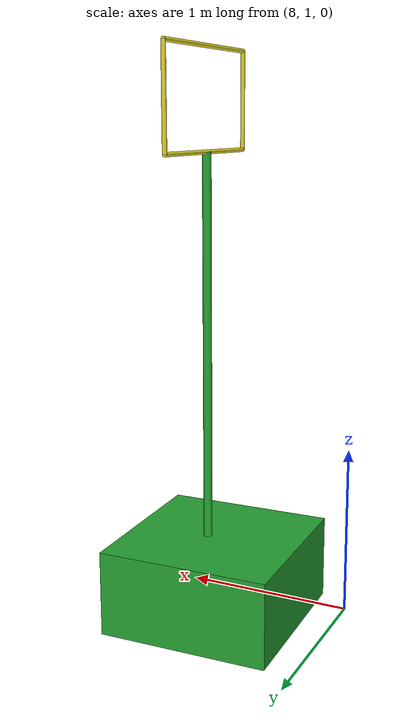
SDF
<sdf version="1.6">
 <world name="vrc_task_1">
  <model name="flipkart_hoop_clone_3">
   <link name="link_0">
    <inertial>
     <mass>0.530306</mass>
     <inertia>
      <ixx>0.0566207</ixx>
      <ixy>0</ixy>
      <ixz>0</ixz>
      <iyy>0.0566207</iyy>
      <iyz>0</iyz>
      <izz>0.0883844</izz>
     </inertia>
    </inertial>
    <pose>0.141833 0.667401 -1.68595 0 -0 0</pose>
    <visual name="visual">
     <geometry><box><size>1 1 0.5</size></box></geometry>
     <material>
      <lighting>1</lighting>
      <script><uri>file://media/materials/scripts/gazebo.material</uri><name>Gazebo/Green</name></script>
      <shader type="pixel"/>
      <emissive>0 0 0 1</emissive>
     </material>
    </visual>
    <collision name="collision">
     <geometry><box><size>1 1 0.5</size></box></geometry>
     <surface>
      <friction>
       <ode><mu>1</mu><mu2>1</mu2><fdir1>0 0 0</fdir1><slip1>0</slip1><slip2>0</slip2></ode>
       <torsional>
        <coefficient>1</coefficient>
        <patch_radius>0</patch_radius>
        <surface_radius>0</surface_radius>
        <use_patch_radius>1</use_patch_radius>
        <ode><slip>0</slip></ode>
       </torsional>
      </friction>
      <bounce><restitution_coefficient>0</restitution_coefficient><threshold>1e+06</threshold></bounce>
      <contact>
       <collide_without_contact>0</collide_without_contact>
       <collide_without_contact_bitmask>1</collide_without_contact_bitmask>
       <collide_bitmask>1</collide_bitmask>
       <ode>
        <soft_cfm>0</soft_cfm>
        <soft_erp>0.2</soft_erp>
        <kp>1e+13</kp>
        <kd>1</kd>
        <max_vel>0.01</max_vel>
        <min_depth>0</min_depth>
       </ode>
       <bullet>
        <split_impulse>1</split_impulse>
        <split_impulse_penetration_threshold>-0.01</split_impulse_penetration_threshold>
        <soft_cfm>0</soft_cfm>
        <soft_erp>0.2</soft_erp>
        <kp>1e+13</kp>
        <kd>1</kd>
       </bullet>
      </contact>
     </surface>
    </collision>
   </link>
   <link name="link_1">
    <inertial>
     <mass>0.25</mass>
     <inertia>
      <ixx>0.130247</ixx>
      <ixy>0</ixy>
      <ixz>0</ixz>
      <iyy>0.130247</iyy>
      <iyz>0</iyz>
      <izz>7.813e-05</izz>
     </inertia>
    </inertial>
    <pose>0.122412 0.714194 -0.478486 0 -0 0</pose>
    <visual name="visual">
     <geometry><cylinder><radius>0.025</radius><length>2.5</length></cylinder></geometry>
     <material>
      <lighting>1</lighting>
      <script><uri>file://media/materials/scripts/gazebo.material</uri><name>Gazebo/Green</name></script>
      <shader type="pixel"/>
      <emissive>0 0 0 1</emissive>
     </material>
    </visual>
    <collision name="collision">
     <geometry><cylinder><radius>0.025</radius><length>2.5</length></cylinder></geometry>
     <surface>
      <friction>
       <ode><mu>1</mu><mu2>1</mu2><fdir1>0 0 0</fdir1><slip1>0</slip1><slip2>0</slip2></ode>
       <torsional>
        <coefficient>1</coefficient>
        <patch_radius>0</patch_radius>
        <surface_radius>0</surface_radius>
        <use_patch_radius>1</use_patch_radius>
        <ode><slip>0</slip></ode>
       </torsional>
      </friction>
      <bounce><restitution_coefficient>0</restitution_coefficient><threshold>1e+06</threshold></bounce>
      <contact>
       <collide_without_contact>0</collide_without_contact>
       <collide_without_contact_bitmask>1</collide_without_contact_bitmask>
       <collide_bitmask>1</collide_bitmask>
       <ode>
        <soft_cfm>0</soft_cfm>
        <soft_erp>0.2</soft_erp>
        <kp>1e+13</kp>
        <kd>1</kd>
        <max_vel>0.01</max_vel>
        <min_depth>0</min_depth>
       </ode>
       <bullet>
        <split_impulse>1</split_impulse>
        <split_impulse_penetration_threshold>-0.01</split_impulse_penetration_threshold>
        <soft_cfm>0</soft_cfm>
        <soft_erp>0.2</soft_erp>
        <kp>1e+13</kp>
        <kd>1</kd>
       </bullet>
      </contact>
     </surface>
    </collision>
   </link>
   <link name="link_2">
    <inertial>
     <mass>0.05</mass>
     <inertia>
      <ixx>0.00416862</ixx>
      <ixy>0</ixy>
      <ixz>0</ixz>
      <iyy>0.00416862</iyy>
      <iyz>0</iyz>
      <izz>3.91e-06</izz>
     </inertia>
    </inertial>
    <pose>0.122412 0.714194 1.32141 1.57 -0 1.57</pose>
    <visual name="visual">
     <geometry><cylinder><radius>0.0125</radius><length>1</length></cylinder></geometry>
     <material>
      <lighting>1</lighting>
      <script><uri>file://media/materials/scripts/gazebo.material</uri><name>Gazebo/Yellow</name></script>
      <shader type="pixel"/>
      <emissive>0 0 0 1</emissive>
     </material>
    </visual>
    <collision name="collision">
     <geometry><cylinder><radius>0.0125</radius><length>1</length></cylinder></geometry>
     <surface>
      <friction>
       <ode><mu>1</mu><mu2>1</mu2><fdir1>0 0 0</fdir1><slip1>0</slip1><slip2>0</slip2></ode>
       <torsional>
        <coefficient>1</coefficient>
        <patch_radius>0</patch_radius>
        <surface_radius>0</surface_radius>
        <use_patch_radius>1</use_patch_radius>
        <ode><slip>0</slip></ode>
       </torsional>
      </friction>
      <bounce><restitution_coefficient>0</restitution_coefficient><threshold>1e+06</threshold></bounce>
      <contact>
       <collide_without_contact>0</collide_without_contact>
       <collide_without_contact_bitmask>1</collide_without_contact_bitmask>
       <collide_bitmask>1</collide_bitmask>
       <ode>
        <soft_cfm>0</soft_cfm>
        <soft_erp>0.2</soft_erp>
        <kp>1e+13</kp>
        <kd>1</kd>
        <max_vel>0.01</max_vel>
        <min_depth>0</min_depth>
       </ode>
       <bullet>
        <split_impulse>1</split_impulse>
        <split_impulse_penetration_threshold>-0.01</split_impulse_penetration_threshold>
        <soft_cfm>0</soft_cfm>
        <soft_erp>0.2</soft_erp>
        <kp>1e+13</kp>
        <kd>1</kd>
       </bullet>
      </contact>
     </surface>
    </collision>
   </link>
   <link name="link_2_clone_0">
    <inertial>
     <mass>0.05</mass>
     <inertia>
      <ixx>0.00416862</ixx>
      <ixy>0</ixy>
      <ixz>0</ixz>
      <iyy>0.00416862</iyy>
      <iyz>0</iyz>
      <izz>3.91e-06</izz>
     </inertia>
    </inertial>
    <pose>0.122412 0.714194 0.771414 1.57 -0 1.57</pose>
    <visual name="visual">
     <geometry><cylinder><radius>0.0125</radius><length>1</length></cylinder></geometry>
     <material>
      <lighting>1</lighting>
      <script><uri>file://media/materials/scripts/gazebo.material</uri><name>Gazebo/Yellow</name></script>
      <shader type="pixel"/>
      <emissive>0 0 0 1</emissive>
     </material>
    </visual>
    <collision name="collision">
     <geometry><cylinder><radius>0.0125</radius><length>1</length></cylinder></geometry>
     <surface>
      <friction>
       <ode><mu>1</mu><mu2>1</mu2><fdir1>0 0 0</fdir1><slip1>0</slip1><slip2>0</slip2></ode>
       <torsional>
        <coefficient>1</coefficient>
        <patch_radius>0</patch_radius>
        <surface_radius>0</surface_radius>
        <use_patch_radius>1</use_patch_radius>
        <ode><slip>0</slip></ode>
       </torsional>
      </friction>
      <bounce><restitution_coefficient>0</restitution_coefficient><threshold>1e+06</threshold></bounce>
      <contact>
       <collide_without_contact>0</collide_without_contact>
       <collide_without_contact_bitmask>1</collide_without_contact_bitmask>
       <collide_bitmask>1</collide_bitmask>
       <ode>
        <soft_cfm>0</soft_cfm>
        <soft_erp>0.2</soft_erp>
        <kp>1e+13</kp>
        <kd>1</kd>
        <max_vel>0.01</max_vel>
        <min_depth>0</min_depth>
       </ode>
       <bullet>
        <split_impulse>1</split_impulse>
        <split_impulse_penetration_threshold>-0.01</split_impulse_penetration_threshold>
        <soft_cfm>0</soft_cfm>
        <soft_erp>0.2</soft_erp>
        <kp>1e+13</kp>
        <kd>1</kd>
       </bullet>
      </contact>
     </surface>
    </collision>
   </link>
   <link name="link_3_clone_clone">
    <inertial>
     <mass>0.025</mass>
     <inertia>
      <ixx>0.00063118</ixx>
      <ixy>0</ixy>
      <ixz>0</ixz>
      <iyy>0.00063118</iyy>
      <iyz>0</iyz>
      <izz>1.95e-06</izz>
     </inertia>
    </inertial>
    <pose>-0.377588 0.714194 1.04641 8e-06 -0 8e-06</pose>
    <visual name="visual">
     <geometry><cylinder><radius>0.0125</radius><length>0.55</length></cylinder></geometry>
     <material>
      <lighting>1</lighting>
      <script><uri>file://media/materials/scripts/gazebo.material</uri><name>Gazebo/Yellow</name></script>
      <shader type="pixel"/>
      <emissive>0 0 0 1</emissive>
     </material>
    </visual>
    <collision name="collision">
     <geometry><cylinder><radius>0.0125</radius><length>0.55</length></cylinder></geometry>
     <surface>
      <friction>
       <ode><mu>1</mu><mu2>1</mu2><fdir1>0 0 0</fdir1><slip1>0</slip1><slip2>0</slip2></ode>
       <torsional>
        <coefficient>1</coefficient>
        <patch_radius>0</patch_radius>
        <surface_radius>0</surface_radius>
        <use_patch_radius>1</use_patch_radius>
        <ode><slip>0</slip></ode>
       </torsional>
      </friction>
      <bounce><restitution_coefficient>0</restitution_coefficient><threshold>1e+06</threshold></bounce>
      <contact>
       <collide_without_contact>0</collide_without_contact>
       <collide_without_contact_bitmask>1</collide_without_contact_bitmask>
       <collide_bitmask>1</collide_bitmask>
       <ode>
        <soft_cfm>0</soft_cfm>
        <soft_erp>0.2</soft_erp>
        <kp>1e+13</kp>
        <kd>1</kd>
        <max_vel>0.01</max_vel>
        <min_depth>0</min_depth>
       </ode>
       <bullet>
        <split_impulse>1</split_impulse>
        <split_impulse_penetration_threshold>-0.01</split_impulse_penetration_threshold>
        <soft_cfm>0</soft_cfm>
        <soft_erp>0.2</soft_erp>
        <kp>1e+13</kp>
        <kd>1</kd>
       </bullet>
      </contact>
     </surface>
    </collision>
   </link>
   <link name="link_3_clone_clone_clone">
    <inertial>
     <mass>0.025</mass>
     <inertia>
      <ixx>0.00063118</ixx>
      <ixy>0</ixy>
      <ixz>0</ixz>
      <iyy>0.00063118</iyy>
      <iyz>0</iyz>
      <izz>1.95e-06</izz>
     </inertia>
    </inertial>
    <pose>0.622412 0.714194 1.04641 5.7e-05 -0 5.7e-05</pose>
    <visual name="visual">
     <geometry><cylinder><radius>0.0125</radius><length>0.55</length></cylinder></geometry>
     <material>
      <lighting>1</lighting>
      <script><uri>file://media/materials/scripts/gazebo.material</uri><name>Gazebo/Yellow</name></script>
      <shader type="pixel"/>
      <emissive>0 0 0 1</emissive>
     </material>
    </visual>
    <collision name="collision">
     <geometry><cylinder><radius>0.0125</radius><length>0.55</length></cylinder></geometry>
     <surface>
      <friction>
       <ode><mu>1</mu><mu2>1</mu2><fdir1>0 0 0</fdir1><slip1>0</slip1><slip2>0</slip2></ode>
       <torsional>
        <coefficient>1</coefficient>
        <patch_radius>0</patch_radius>
        <surface_radius>0</surface_radius>
        <use_patch_radius>1</use_patch_radius>
        <ode><slip>0</slip></ode>
       </torsional>
      </friction>
      <bounce><restitution_coefficient>0</restitution_coefficient><threshold>1e+06</threshold></bounce>
      <contact>
       <collide_without_contact>0</collide_without_contact>
       <collide_without_contact_bitmask>1</collide_without_contact_bitmask>
       <collide_bitmask>1</collide_bitmask>
       <ode>
        <soft_cfm>0</soft_cfm>
        <soft_erp>0.2</soft_erp>
        <kp>1e+13</kp>
        <kd>1</kd>
        <max_vel>0.01</max_vel>
        <min_depth>0</min_depth>
       </ode>
       <bullet>
        <split_impulse>1</split_impulse>
        <split_impulse_penetration_threshold>-0.01</split_impulse_penetration_threshold>
        <soft_cfm>0</soft_cfm>
        <soft_erp>0.2</soft_erp>
        <kp>1e+13</kp>
        <kd>1</kd>
       </bullet>
      </contact>
     </surface>
    </collision>
   </link>
   <joint name="link_0_JOINT_0" type="fixed">
    <parent>link_0</parent>
    <child>link_1</child>
    <physics>
     <ode><limit><cfm>0</cfm><erp>0.2</erp></limit><suspension><cfm>0</cfm><erp>0.2</erp></suspension></ode>
    </physics>
   </joint>
   <joint name="link_1_JOINT_0" type="fixed">
    <parent>link_1</parent>
    <child>link_2_clone_0</child>
    <physics>
     <ode><limit><cfm>0</cfm><erp>0.2</erp></limit><suspension><cfm>0</cfm><erp>0.2</erp></suspension></ode>
    </physics>
   </joint>
   <joint name="link_2_JOINT_2" type="fixed">
    <parent>link_2</parent>
    <child>link_3_clone_clone_clone</child>
    <physics>
     <ode><limit><cfm>0</cfm><erp>0.2</erp></limit><suspension><cfm>0</cfm><erp>0.2</erp></suspension></ode>
    </physics>
   </joint>
   <joint name="link_2_clone_0_JOINT_4" type="fixed">
    <parent>link_2_clone_0</parent>
    <child>link_3_clone_clone</child>
    <physics>
     <ode><limit><cfm>0</cfm><erp>0.2</erp></limit><suspension><cfm>0</cfm><erp>0.2</erp></suspension></ode>
    </physics>
   </joint>
   <joint name="link_3_clone_clone_JOINT_1" type="fixed">
    <parent>link_3_clone_clone</parent>
    <child>link_2</child>
    <physics>
     <ode><limit><cfm>0</cfm><erp>0.2</erp></limit><suspension><cfm>0</cfm><erp>0.2</erp></suspension></ode>
    </physics>
   </joint>
   <joint name="link_3_clone_clone_clone_JOINT_3" type="fixed">
    <parent>link_3_clone_clone_clone</parent>
    <child>link_2_clone_0</child>
    <physics>
     <ode><limit><cfm>0</cfm><erp>0.2</erp></limit><suspension><cfm>0</cfm><erp>0.2</erp></suspension></ode>
    </physics>
   </joint>
   <static>0</static>
   <pose>8.00051 1.49961 1.93592 1e-06 5.8e-05 -1.54089</pose>
  </model>
 </world>
</sdf>
